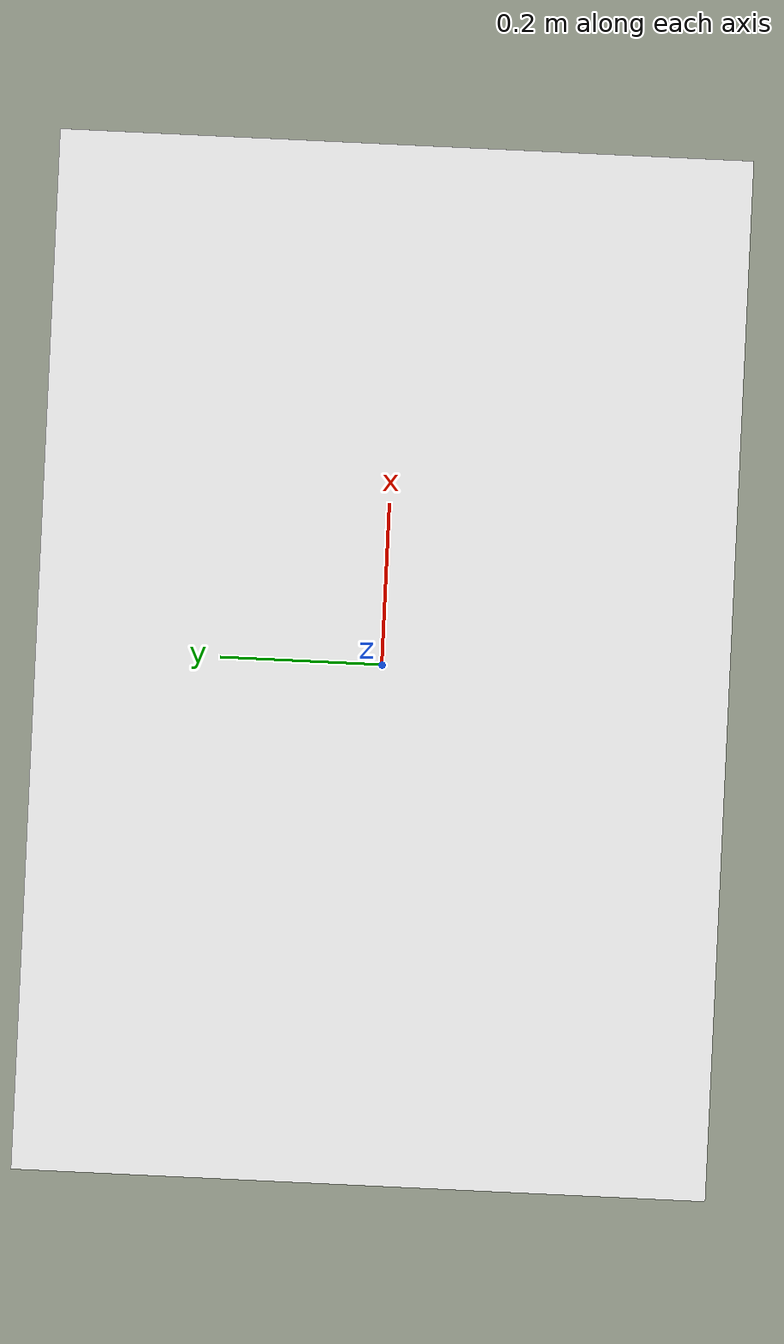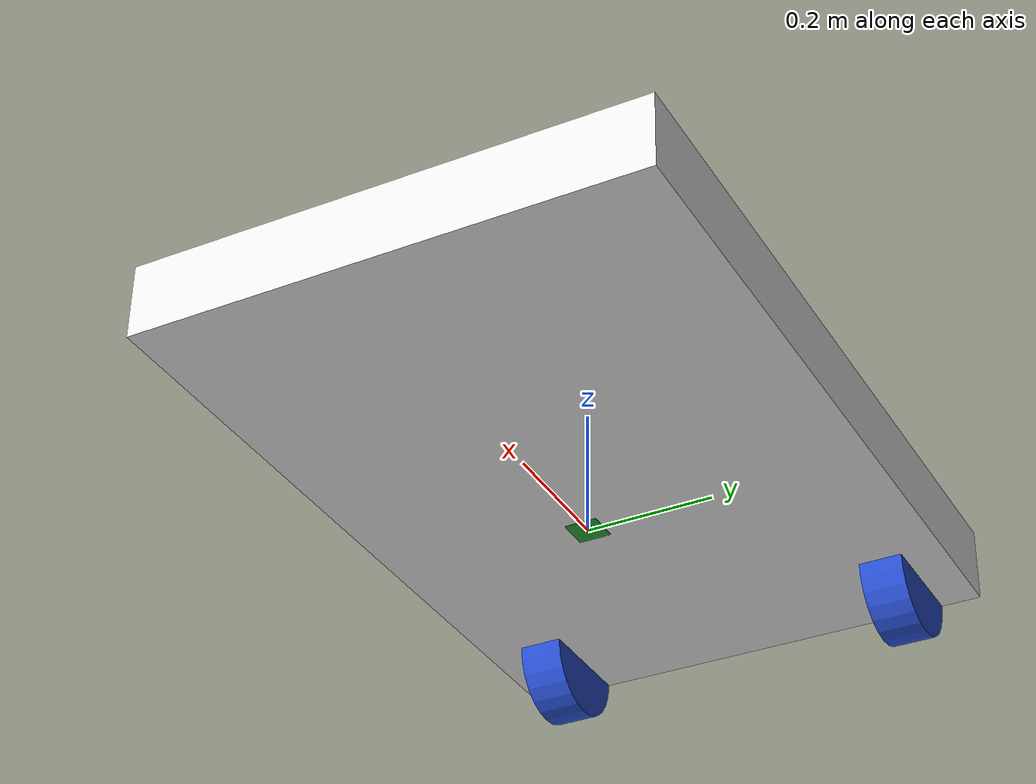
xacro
<?xml version="1.0"?>

<robot name="base"
    xmlns:xacro="http://ros.org/wiki/xacro">

    <xacro:include filename="$(find ackermann_steer_bot_description)/urdf/common_properties/common_properties.urdf.xacro" />

    <!-- Define a number of dimensions using properties -->
    <xacro:property name="base_size_x" value="1.20" />
    <xacro:property name="base_size_y" value="0.8" />
    <xacro:property name="base_size_z" value="0.12" />
    <xacro:property name="wheel_length" value="0.07032" /> <!-- 0.06032 value for perfect fit.-->
    <xacro:property name="wheel_radius" value="0.09191" />
    <xacro:property name="wheel_offset_x" value="0.00" />
    <xacro:property name="wheel_offset_y" value="0.1" />
    <xacro:property name="PI" value="3.1415" />
    <!-- differential_drive_controller update rate -->
    <xacro:property name="update_rate" value="30" />
    <!--
        For more colors check the link below
        http://wiki.ros.org/simulator_gazebo/Tutorials/ListOfMaterials
    -->
    <xacro:property name="wheel_color" value="WoodPallet" />
    <xacro:property name="castor_wheel_color" value="Grass" />
    <xacro:property name="body_color" value="WoodFloor" />

    <xacro:macro name="wheel" params="suffix parent reflect color_rviz color_gazebo">
        <joint name="${parent}_${suffix}_wheel_joint" type="continuous">
            <axis xyz="0 0 ${-reflect}" />
            <limit effort="100" velocity="100"/>
            <safety_controller k_velocity="10" />
            <origin xyz="-${base_size_x/2 - wheel_radius - wheel_offset_x } ${reflect * (base_size_y/2 - wheel_offset_y)} -${base_size_z/2}" rpy="${reflect*PI/2} 0 0" />
            <parent link="${parent}_link"/>
            <child link="${parent}_${suffix}_wheel_link"/>
        </joint>
        <gazebo reference="${parent}_${suffix}_wheel_link">
            <material>Gazebo/${color_gazebo}</material>
        </gazebo>
        <link name="${parent}_${suffix}_wheel_link">
            <visual>
                <origin xyz="0 0 0" rpy="0 0 0" />
                <geometry>
                    <cylinder radius="${wheel_radius}" length="${wheel_length}"/>
                </geometry>
                <material name="${color_rviz}" />
            </visual>
            <collision>
                <origin xyz="0 0 0" rpy="0 0 0" />
                <geometry>
                    <cylinder radius="${wheel_radius}" length="${wheel_length}"/>
                </geometry>
                <surface>
                    <friction>
                    <ode>
                        <mu>0.998000</mu>
                        <mu2>0.998000</mu2>
                        <fdir1>0.000000 0.000000 0.000000</fdir1>
                        <slip1>0.000000</slip1>
                        <slip2>0.000000</slip2>
                    </ode>
                    </friction>
                </surface>
            </collision>
            <xacro:cylinder_inertial radius="${wheel_radius}" length="${wheel_length}" mass="5">
                <origin xyz="0 0 0" />
            </xacro:cylinder_inertial>
        </link>
    </xacro:macro>

    <!-- The base xacro macro -->
    <xacro:macro name="base" params="name color_rviz color_gazebo">
        <gazebo reference="${name}_link">
            <material>Gazebo/${color_gazebo}</material>
        </gazebo>
        <link name="${name}_link">
            <visual>
                <origin xyz="0 0 0" rpy="0 0 0" />
                <geometry>
                    <box size="${base_size_x} ${base_size_y} ${base_size_z}" />
                </geometry>
                <material name="${color_rviz}" />
            </visual>
            <collision>
                <origin xyz="0 0 0" rpy="0 0 0" />
                <geometry>
                    <box size="${base_size_x} ${base_size_y} ${base_size_z}" />
                </geometry>
            </collision>
            <xacro:box_inertial x="${base_size_x}" y="${base_size_y}" z="${base_size_z}" mass="15">
                <origin xyz="0 0 0" />
            </xacro:box_inertial>
        </link>
    </xacro:macro>

    <link name="base_footprint">
        <visual>
            <origin xyz="0 0 0" rpy="0 0 0" />
            <geometry>
                <box size="0.05 0.05 0.001" />
            </geometry>
            <material name="TransparentGreen" />
        </visual>
    </link>

    <joint name="base_joint" type="fixed">
        <origin xyz="0 0 ${base_size_z/2 + wheel_radius}" rpy="0 0 0" />
        <parent link="base_footprint"/>
        <child link="base_link" />
    </joint>

    <!-- Add base_link -->
    <xacro:base name="base" color_rviz="OffWhite" color_gazebo="${body_color}" />
    <!-- Add the drive wheels -->
    <xacro:wheel parent="base" suffix="l" reflect="1" color_rviz="Blue" color_gazebo="${wheel_color}" />
    <xacro:wheel parent="base" suffix="r" reflect="-1" color_rviz="Blue" color_gazebo="${wheel_color}" />

</robot>

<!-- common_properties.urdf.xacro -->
<!--
  Various useful properties such as constants and materials
 -->
<robot name="xacro_properties" xmlns:xacro="http://ros.org/wiki/xacro">
  <!-- #################### RViz materials #################### -->
  <xacro:property name="material_white">
    <material name="white">
      <color rgba="1 1 1 1"/>
    </material>
  </xacro:property>
  <xacro:property name="material_yellow">
    <material name="yellow">
      <color rgba="${255/255} ${226/255} ${0/255} 1"/>
    </material>
  </xacro:property>
  <xacro:property name="material_almost_white">
    <material name="almost_white">
      <color rgba="0.9 0.9 0.9 1" />
    </material>
  </xacro:property>
  <xacro:property name="material_grey">
    <material name="grey">
      <color rgba="0.5 0.5 0.5 1"/>
    </material>
  </xacro:property>
  <xacro:property name="material_light_grey">
    <material name="light_grey">
      <color rgba="0.6 0.6 0.6 1"/>
    </material>
  </xacro:property>
  <xacro:property name="material_dark_grey">
    <material name="dark_grey">
      <color rgba="0.3 0.3 0.3 1"/>
    </material>
  </xacro:property>
  <xacro:property name="material_black">
    <material name="black">
      <color rgba="0.1 0.1 0.1 1"/>
    </material>
  </xacro:property>
  <xacro:property name="material_aluminum">
    <material name="aluminum">
      <color rgba="0.8 0.8 0.8 1" />
    </material>
  </xacro:property>
  <xacro:property name="material_silver">
    <material name="silver">
      <color rgba="0.79 0.82 0.93 1" />
    </material>
  </xacro:property>

  <xacro:property name="ppp" value="Black"/>

  <!-- #################### inertials with origin #################### -->
  <!-- see https://secure.wikimedia.org/wikipedia/en/wiki/List_of_moment_of_inertia_tensors -->
  <xacro:macro name="sphere_inertial" params="radius mass *origin">
    <inertial>
      <mass value="${mass}" />
      <xacro:insert_block name="origin" />
      <inertia ixx="${0.4 * mass * radius * radius}" ixy="0.0" ixz="0.0"
        iyy="${0.4 * mass * radius * radius}" iyz="0.0"
        izz="${0.4 * mass * radius * radius}" />
    </inertial>
  </xacro:macro>

  <xacro:macro name="cylinder_inertial" params="radius length mass *origin">
    <inertial>
      <mass value="${mass}" />
      <xacro:insert_block name="origin" />
      <inertia ixx="${0.0833333 * mass * (3 * radius * radius + length * length)}" ixy="0.0" ixz="0.0"
        iyy="${0.0833333 * mass * (3 * radius * radius + length * length)}" iyz="0.0"
        izz="${0.5 * mass * radius * radius}" />
    </inertial>
  </xacro:macro>

  <xacro:macro name="box_inertial" params="x y z mass *origin">
    <inertial>
      <mass value="${mass}" />
      <xacro:insert_block name="origin" />
      <inertia ixx="${0.0833333 * mass * (y*y + z*z)}" ixy="0.0" ixz="0.0"
        iyy="${0.0833333 * mass * (x*x + z*z)}" iyz="0.0"
        izz="${0.0833333 * mass * (x*x + y*y)}" />
    </inertial>
  </xacro:macro>
</robot>
